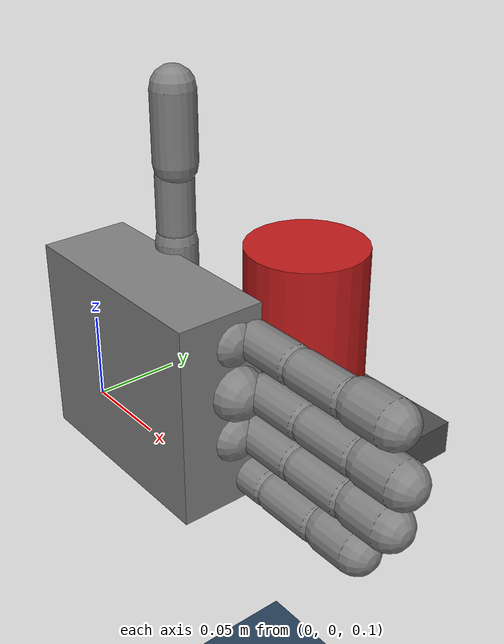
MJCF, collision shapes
<mujoco model="hand_only">
  <compiler angle="radian" meshdir="../assets/robotis_ffw/assets" autolimits="true"/>

  <option timestep="0.001" integrator="implicitfast" cone="elliptic" impratio="10"/>

  <visual>
    <headlight diffuse="0.6 0.6 0.6" ambient="0.3 0.3 0.3" specular="0 0 0"/>
    <rgba haze="0.15 0.25 0.35 1"/>
    <global azimuth="120" elevation="-20" offwidth="1280" offheight="960"/>
  </visual>

  <asset>
    <texture type="skybox" builtin="gradient" rgb1="0.3 0.5 0.7" rgb2="0 0 0" width="512" height="3072"/>
    <texture type="2d" name="groundplane" builtin="checker" mark="edge" rgb1="0.2 0.3 0.4" rgb2="0.1 0.2 0.3"
      markrgb="0.8 0.8 0.8" width="300" height="300"/>
    <material name="groundplane" texture="groundplane" texuniform="true" texrepeat="5 5" reflectance="0.2"/>
    <material name="black" rgba="0.2 0.2 0.2 1"/>
    <material name="can_mat" rgba="0.75 0.1 0.1 1"/>

    <mesh name="hx5_r_base" file="hx5_d20/hx5_d20_right/hx5_d20_base_unit.stl" scale="0.001 0.001 0.001"/>
    <mesh name="hx5_r_thumb_mcp" file="hx5_d20/hx5_d20_right/hx5_d20_thumb_mcp.stl" scale="0.001 0.001 0.001"/>
    <mesh name="hx5_r_thumb_mcp2" file="hx5_d20/hx5_d20_right/hx5_d20_thumb_mcp2.stl" scale="0.001 0.001 0.001"/>
    <mesh name="hx5_r_thumb_ip" file="hx5_d20/hx5_d20_right/hx5_d20_thumb_ip.stl" scale="0.001 0.001 0.001"/>
    <mesh name="hx5_r_thumb_tip" file="hx5_d20/hx5_d20_right/hx5_d20_thumb_tip.stl" scale="0.001 0.001 0.001"/>
    <mesh name="hx5_r_finger_mcp" file="hx5_d20/hx5_d20_right/hx5_d20_finger_mcp.stl" scale="0.001 0.001 0.001"/>
    <mesh name="hx5_r_finger_pip" file="hx5_d20/hx5_d20_right/hx5_d20_finger_pip.stl" scale="0.001 0.001 0.001"/>
    <mesh name="hx5_r_finger_dip" file="hx5_d20/hx5_d20_right/hx5_d20_finger_dip.stl" scale="0.001 0.001 0.001"/>
    <mesh name="hx5_r_finger_tip" file="hx5_d20/hx5_d20_right/hx5_d20_finger_tip.stl" scale="0.001 0.001 0.001"/>
  </asset>

  <default>
    <!-- 시각화 메시는 충돌에 사용하지 않는다. 공식 손가락 충돌 형상이 메시 기반임을
         0단계에서 확인했으므로, 1단계부터 아래의 캡슐과 상자 형상으로 대체한다. -->
    <default class="visual">
      <geom type="mesh" contype="0" conaffinity="0" density="0" group="2"/>
    </default>
    <!-- shadow_hand 설정을 참고한 손 충돌 형상의 solimp/solref 값 -->
    <default class="collision">
      <geom group="3" contype="1" conaffinity="1" condim="3" solimp="0.5 0.99 0.0001" solref="0.005 1"/>
    </default>

    <default class="finger">
      <joint frictionloss="0.05" armature="0.05" damping="1.0"/>
      <!-- shadow_hand 수준의 액추에이터 설정: kp 0.5~2, forcerange ±1~2 N·m -->
      <position kp="0.7" dampratio="1" forcerange="-1.0 1.0"/>
      <default class="thumb_r_cmc">
        <joint axis="1 0 0" range="-1.5708 1.5708"/>
      </default>
      <default class="thumb_r_mcp_yaw">
        <joint axis="0 0 1" range="-3.1416 0"/>
      </default>
      <default class="thumb_r_mcp_pitch">
        <joint axis="1 0 0" range="0 1.5708"/>
      </default>
      <default class="thumb_r_ip">
        <joint axis="1 0 0" range="0 1.5708"/>
      </default>
      <default class="finger_mcp">
        <joint axis="1 0 0" range="-0.6109 0.6109"/>
      </default>
      <default class="finger_pip">
        <joint axis="0 1 0" range="0 2.0071"/>
      </default>
      <default class="finger_dip">
        <joint axis="0 1 0" range="0 1.5708"/>
      </default>
      <default class="finger_tip">
        <joint axis="0 1 0" range="0 1.5708"/>
      </default>
    </default>
  </default>

  <worldbody>
    <light pos="0 0 1.5" dir="0 0 -1" directional="true"/>
    <geom name="floor" size="0 0 0.05" type="plane" material="groundplane" pos="0 0 -0.3"/>

    <!-- 모션 캡처 기준점: 아래 등식 제약으로 hx5_r_base를 이 몸체에 용접한다.
         이는 MuJoCo에서 물체를 월드에 고정하는 표준 방식이다. 물리 엔진이 제약력으로
         용접을 유지하므로 hx5_r_base의 qpos를 직접 쓰지 않는다. -->
    <body name="hand_mocap" mocap="true" pos="0 0 0.15" quat="0.5 0.5 0.5 0.5">
      <geom type="box" size="0.008 0.008 0.008" rgba="1 0 0 0.4" contype="0" conaffinity="0"/>
    </body>

    <body name="hx5_r_base" pos="0 0 0.15" quat="0.5 0.5 0.5 0.5">
      <freejoint name="hand_free"/>
      <inertial pos="-0.00259546 0.00179263 0.0629577" mass="0.301852"
        diaginertia="0.000542413 0.000389333 0.000210116"/>
      <geom type="mesh" mesh="hx5_r_base" material="black" class="visual"/>
      <geom name="palm_collision" type="box" size="0.02421 0.05536 0.06126"
        pos="-0.00321 -0.00121 0.06126" class="collision"/>

      <!-- 엄지(관절 4개) -->
      <body name="finger_r_link1" pos="-0.0125 0.03493 0.04475">
        <inertial pos="0.0238075 0.00131524 0.000460355" mass="0.0408685"
          diaginertia="2.88193e-06 9.43334e-06 9.65126e-06"/>
        <joint name="finger_r_joint1" class="thumb_r_cmc"/>
        <geom type="mesh" mesh="hx5_r_thumb_mcp" material="black" class="visual"/>
        <geom type="capsule" fromto="-0.000125 0.00225 0  0.037125 0.00225 0" size="0.011375" class="collision"/>
        <body name="finger_r_link2" pos="0.039 0 0">
          <inertial pos="-0.000356679 0.0139993 0.000359207" mass="0.0117606"
            diaginertia="1.30235e-06 1.05564e-06 1.30247e-06"/>
          <joint name="finger_r_joint2" class="thumb_r_mcp_yaw"/>
          <geom type="mesh" mesh="hx5_r_thumb_mcp2" material="black" class="visual"/>
          <geom type="capsule" fromto="0 0.00525 0  0 0.02275 0" size="0.0115" class="collision"/>
          <body name="finger_r_link3" pos="0 0.028 0">
            <inertial pos="-0.000101462 0.0113435 4.08056e-06" mass="0.034690"
              diaginertia="5.03702e-06 2.25807e-06 5.40298e-06"/>
            <joint name="finger_r_joint3" class="thumb_r_mcp_pitch"/>
            <geom type="mesh" mesh="hx5_r_thumb_ip" material="black" class="visual"/>
            <geom type="capsule" fromto="0 0.001 0  0 0.03125 0" size="0.0105" class="collision"/>
            <body name="finger_r_link4" pos="0 0.0355 0">
              <inertial pos="6.66050e-05 0.0168245 0.000223985" mass="0.043875"
                diaginertia="1.11607e-05 2.80794e-06 1.13431e-05"/>
              <joint name="finger_r_joint4" class="thumb_r_ip"/>
              <geom type="mesh" mesh="hx5_r_thumb_tip" material="black" class="visual"/>
              <!-- 손끝: 측정 반지름에 1 mm 여유를 더함 -->
              <geom type="capsule" fromto="0 0.0025 0.0015  0 0.0415 0.0015" size="0.012" class="collision"/>
            </body>
          </body>
        </body>
      </body>

      <!-- 검지(관절 4개) -->
      <body name="finger_r_link5" pos="-0.0015 0.03608 0.09575">
        <inertial pos="0.00519340 -1.81631e-05 0.0211155" mass="0.0388044"
          diaginertia="3.52499e-06 5.79216e-06 4.71268e-06"/>
        <joint name="finger_r_joint5" class="finger_mcp"/>
        <geom type="mesh" mesh="hx5_r_finger_mcp" material="black" class="visual"/>
        <geom type="capsule" fromto="0.00685 0 0.00858  0.00685 0 0.01818" size="0.014825" class="collision"/>
        <body name="finger_r_link6" pos="0.0165 0 0.0235">
          <inertial pos="4.08056e-06 0.000101462 0.0241565" mass="0.034690"
            diaginertia="5.40298e-06 5.03702e-06 2.25807e-06"/>
          <joint name="finger_r_joint6" class="finger_pip"/>
          <geom type="mesh" mesh="hx5_r_finger_pip" material="black" class="visual"/>
          <geom type="capsule" fromto="0 0 0.004255  0 0 0.034505" size="0.0105" class="collision"/>
          <body name="finger_r_link7" pos="0 0 0.0355">
            <inertial pos="4.08056e-06 0.000101462 0.0241565" mass="0.034690"
              diaginertia="5.40298e-06 5.03702e-06 2.25807e-06"/>
            <joint name="finger_r_joint7" class="finger_dip"/>
            <geom type="mesh" mesh="hx5_r_finger_dip" material="black" class="visual"/>
            <geom type="capsule" fromto="0 0 0.004255  0 0 0.034505" size="0.0105" class="collision"/>
            <body name="finger_r_link8" pos="0 0 0.0355">
              <inertial pos="0.000710251 0.000472384 0.0180986" mass="0.013637"
                diaginertia="2.23243e-06 2.01881e-06 1.07866e-06"/>
              <joint name="finger_r_joint8" class="finger_tip"/>
              <geom type="mesh" mesh="hx5_r_finger_tip" material="black" class="visual"/>
              <geom type="capsule" fromto="0.0015 0 0.006005  0.0015 0 0.025755" size="0.01225" class="collision"/>
            </body>
          </body>
        </body>
      </body>

      <!-- 중지(관절 4개) -->
      <body name="finger_r_link9" pos="-0.0015 0.00908 0.10353">
        <inertial pos="0.00519340 -1.81631e-05 0.0211155" mass="0.0388044"
          diaginertia="3.52499e-06 5.79216e-06 4.71268e-06"/>
        <joint name="finger_r_joint9" class="finger_mcp"/>
        <geom type="mesh" mesh="hx5_r_finger_mcp" material="black" class="visual"/>
        <geom type="capsule" fromto="0.00685 0 0.00858  0.00685 0 0.01818" size="0.014825" class="collision"/>
        <body name="finger_r_link10" pos="0.0165 0 0.0235">
          <inertial pos="4.08056e-06 0.000101462 0.0241565" mass="0.034690"
            diaginertia="5.40298e-06 5.03702e-06 2.25807e-06"/>
          <joint name="finger_r_joint10" class="finger_pip"/>
          <geom type="mesh" mesh="hx5_r_finger_pip" material="black" class="visual"/>
          <geom type="capsule" fromto="0 0 0.004255  0 0 0.034505" size="0.0105" class="collision"/>
          <body name="finger_r_link11" pos="0 0 0.0355">
            <inertial pos="4.08056e-06 0.000101462 0.0241565" mass="0.034690"
              diaginertia="5.40298e-06 5.03702e-06 2.25807e-06"/>
            <joint name="finger_r_joint11" class="finger_dip"/>
            <geom type="mesh" mesh="hx5_r_finger_dip" material="black" class="visual"/>
            <geom type="capsule" fromto="0 0 0.004255  0 0 0.034505" size="0.0105" class="collision"/>
            <body name="finger_r_link12" pos="0 0 0.0355">
              <inertial pos="0.000710251 0.000472384 0.0180986" mass="0.013637"
                diaginertia="2.23243e-06 2.01881e-06 1.07866e-06"/>
              <joint name="finger_r_joint12" class="finger_tip"/>
              <geom type="mesh" mesh="hx5_r_finger_tip" material="black" class="visual"/>
              <geom type="capsule" fromto="0.0015 0 0.006005  0.0015 0 0.025755" size="0.01225" class="collision"/>
            </body>
          </body>
        </body>
      </body>

      <!-- 약지(관절 4개): 2단계의 엄지·검지·중지 3점 파지 대안에 따라
           range=0으로 잠근다. -->
      <body name="finger_r_link13" pos="-0.0015 -0.01792 0.09775">
        <inertial pos="0.00519340 -1.81631e-05 0.0211155" mass="0.0388044"
          diaginertia="3.52499e-06 5.79216e-06 4.71268e-06"/>
        <joint name="finger_r_joint13" class="finger_mcp" range="0 0"/>
        <geom type="mesh" mesh="hx5_r_finger_mcp" material="black" class="visual"/>
        <geom type="capsule" fromto="0.00685 0 0.00858  0.00685 0 0.01818" size="0.014825" class="collision"/>
        <body name="finger_r_link14" pos="0.0165 0 0.0235">
          <inertial pos="4.08056e-06 0.000101462 0.0241565" mass="0.034690"
            diaginertia="5.40298e-06 5.03702e-06 2.25807e-06"/>
          <joint name="finger_r_joint14" class="finger_pip" range="0 0"/>
          <geom type="mesh" mesh="hx5_r_finger_pip" material="black" class="visual"/>
          <geom type="capsule" fromto="0 0 0.004255  0 0 0.034505" size="0.0105" class="collision"/>
          <body name="finger_r_link15" pos="0 0 0.0355">
            <inertial pos="4.08056e-06 0.000101462 0.0241565" mass="0.034690"
              diaginertia="5.40298e-06 5.03702e-06 2.25807e-06"/>
            <joint name="finger_r_joint15" class="finger_dip" range="0 0"/>
            <geom type="mesh" mesh="hx5_r_finger_dip" material="black" class="visual"/>
            <geom type="capsule" fromto="0 0 0.004255  0 0 0.034505" size="0.0105" class="collision"/>
            <body name="finger_r_link16" pos="0 0 0.0355">
              <inertial pos="0.000710251 0.000472384 0.0180986" mass="0.013637"
                diaginertia="2.23243e-06 2.01881e-06 1.07866e-06"/>
              <joint name="finger_r_joint16" class="finger_tip" range="0 0"/>
              <geom type="mesh" mesh="hx5_r_finger_tip" material="black" class="visual"/>
              <geom type="capsule" fromto="0.0015 0 0.006005  0.0015 0 0.025755" size="0.01225" class="collision"/>
            </body>
          </body>
        </body>
      </body>

      <!-- 소지(관절 4개): range=0으로 잠근다. 위 약지 설명을 참고한다. -->
      <body name="finger_r_link17" pos="-0.0015 -0.04492 0.07875">
        <inertial pos="0.00519340 -1.81631e-05 0.0211155" mass="0.0388044"
          diaginertia="3.52499e-06 5.79216e-06 4.71268e-06"/>
        <joint name="finger_r_joint17" class="finger_mcp" range="0 0"/>
        <geom type="mesh" mesh="hx5_r_finger_mcp" material="black" class="visual"/>
        <geom type="capsule" fromto="0.00685 0 0.00858  0.00685 0 0.01818" size="0.014825" class="collision"/>
        <body name="finger_r_link18" pos="0.0165 0 0.0235">
          <inertial pos="4.08056e-06 0.000101462 0.0241565" mass="0.034690"
            diaginertia="5.40298e-06 5.03702e-06 2.25807e-06"/>
          <joint name="finger_r_joint18" class="finger_pip" range="0 0"/>
          <geom type="mesh" mesh="hx5_r_finger_pip" material="black" class="visual"/>
          <geom type="capsule" fromto="0 0 0.004255  0 0 0.034505" size="0.0105" class="collision"/>
          <body name="finger_r_link19" pos="0 0 0.0355">
            <inertial pos="4.08056e-06 0.000101462 0.0241565" mass="0.034690"
              diaginertia="5.40298e-06 5.03702e-06 2.25807e-06"/>
            <joint name="finger_r_joint19" class="finger_dip" range="0 0"/>
            <geom type="mesh" mesh="hx5_r_finger_dip" material="black" class="visual"/>
            <geom type="capsule" fromto="0 0 0.004255  0 0 0.034505" size="0.0105" class="collision"/>
            <body name="finger_r_link20" pos="0 0 0.0355">
              <inertial pos="0.000710251 0.000472384 0.0180986" mass="0.013637"
                diaginertia="2.23243e-06 2.01881e-06 1.07866e-06"/>
              <joint name="finger_r_joint20" class="finger_tip" range="0 0"/>
              <geom type="mesh" mesh="hx5_r_finger_tip" material="black" class="visual"/>
              <geom type="capsule" fromto="0.0015 0 0.006005  0.0015 0 0.025755" size="0.01225" class="collision"/>
            </body>
          </body>
        </body>
      </body>
    </body>

    <geom name="can_support" type="box" size="0.05 0.045 0.01" pos="0.105 0.085 0.095"
      rgba="0.3 0.3 0.3 1"/>

    <!-- 캔: 자유 관절을 사용한다. 모든 손-캔 접촉에서 캔의 접촉 매개변수가 손가락
         형상보다 우선하도록 priority=1을 지정했다(shadow_hand 설정 참고). -->
    <body name="can" pos="0.105 0.065 0.16">
      <freejoint name="can_free"/>
      <inertial pos="0 0 0" mass="0.35" diaginertia="0.000448 0.000448 0.00019"/>
      <geom name="can_geom" type="cylinder" size="0.033 0.055" material="can_mat"
        priority="1" condim="6" friction="0.5 0.01 0.003"
        solimp="0.5 0.99 0.0001" solref="0.005 1"/>
    </body>
  </worldbody>

  <equality>
    <weld body1="hx5_r_base" body2="hand_mocap" solref="0.005 1" solimp="0.9 0.95 0.001"/>
  </equality>

  <contact>
    <exclude body1="finger_r_link1" body2="finger_r_link2"/>
    <exclude body1="finger_r_link2" body2="finger_r_link3"/>
    <exclude body1="finger_r_link3" body2="finger_r_link4"/>
    <exclude body1="finger_r_link5" body2="finger_r_link6"/>
    <exclude body1="finger_r_link6" body2="finger_r_link7"/>
    <exclude body1="finger_r_link7" body2="finger_r_link8"/>
    <exclude body1="finger_r_link9" body2="finger_r_link10"/>
    <exclude body1="finger_r_link10" body2="finger_r_link11"/>
    <exclude body1="finger_r_link11" body2="finger_r_link12"/>
    <exclude body1="finger_r_link13" body2="finger_r_link14"/>
    <exclude body1="finger_r_link14" body2="finger_r_link15"/>
    <exclude body1="finger_r_link15" body2="finger_r_link16"/>
    <exclude body1="finger_r_link17" body2="finger_r_link18"/>
    <exclude body1="finger_r_link18" body2="finger_r_link19"/>
    <exclude body1="finger_r_link19" body2="finger_r_link20"/>
    <exclude body1="finger_r_link5" body2="finger_r_link9"/>
    <exclude body1="finger_r_link9" body2="finger_r_link13"/>
    <exclude body1="finger_r_link13" body2="finger_r_link17"/>
    <!-- palm_collision은 손가락 결합부가 파인 실제 손바닥 메시를 하나의 상자로
         단순 근사한 것이다. 정지 자세에서 일부 손가락 중간 링크가 상자 안으로 들어가므로,
         개별 쌍을 나열하기보다 손바닥과 모든 손가락 링크 사이의 충돌을 넓게 제외한다. -->
    <exclude body1="hx5_r_base" body2="finger_r_link1"/>
    <exclude body1="hx5_r_base" body2="finger_r_link2"/>
    <exclude body1="hx5_r_base" body2="finger_r_link5"/>
    <exclude body1="hx5_r_base" body2="finger_r_link6"/>
    <exclude body1="hx5_r_base" body2="finger_r_link9"/>
    <exclude body1="hx5_r_base" body2="finger_r_link10"/>
    <exclude body1="hx5_r_base" body2="finger_r_link13"/>
    <exclude body1="hx5_r_base" body2="finger_r_link14"/>
    <exclude body1="hx5_r_base" body2="finger_r_link17"/>
    <exclude body1="hx5_r_base" body2="finger_r_link18"/>
  </contact>

  <actuator>
    <position class="thumb_r_cmc" name="finger_r_joint1" joint="finger_r_joint1" inheritrange="1"/>
    <position class="thumb_r_mcp_yaw" name="finger_r_joint2" joint="finger_r_joint2" inheritrange="1"/>
    <position class="thumb_r_mcp_pitch" name="finger_r_joint3" joint="finger_r_joint3" inheritrange="1"/>
    <position class="thumb_r_ip" name="finger_r_joint4" joint="finger_r_joint4" inheritrange="1"/>
    <position class="finger_mcp" name="finger_r_joint5" joint="finger_r_joint5" inheritrange="1"/>
    <position class="finger_pip" name="finger_r_joint6" joint="finger_r_joint6" inheritrange="1"/>
    <position class="finger_dip" name="finger_r_joint7" joint="finger_r_joint7" inheritrange="1"/>
    <position class="finger_tip" name="finger_r_joint8" joint="finger_r_joint8" inheritrange="1"/>
    <position class="finger_mcp" name="finger_r_joint9" joint="finger_r_joint9" inheritrange="1"/>
    <position class="finger_pip" name="finger_r_joint10" joint="finger_r_joint10" inheritrange="1"/>
    <position class="finger_dip" name="finger_r_joint11" joint="finger_r_joint11" inheritrange="1"/>
    <position class="finger_tip" name="finger_r_joint12" joint="finger_r_joint12" inheritrange="1"/>
    <!-- 약지·소지(joint13~20)는 range=0으로 잠겨 있으므로 액추에이터가 없다. -->
  </actuator>

  <keyframe>
    <key name="pregrasp"
      qpos="0 0 0.15  0.5 0.5 0.5 0.5
            0.131 -1.309 0 0
            0 0.4014 0.3142 0.3142
            0 0.4014 0.3142 0.3142
            0 0 0 0
            0 0 0 0
            0.105 0.065 0.16  1 0 0 0"
      ctrl="0.131 -1.309 0 0
            0 0.4014 0.3142 0.3142
            0 0.4014 0.3142 0.3142"/>
  </keyframe>
</mujoco>
